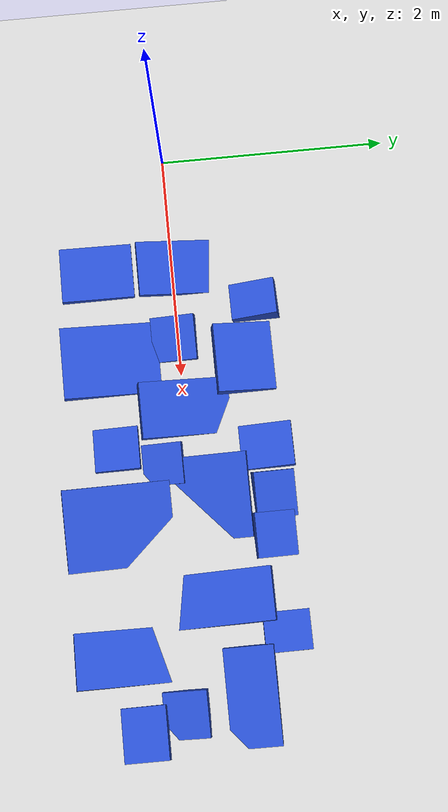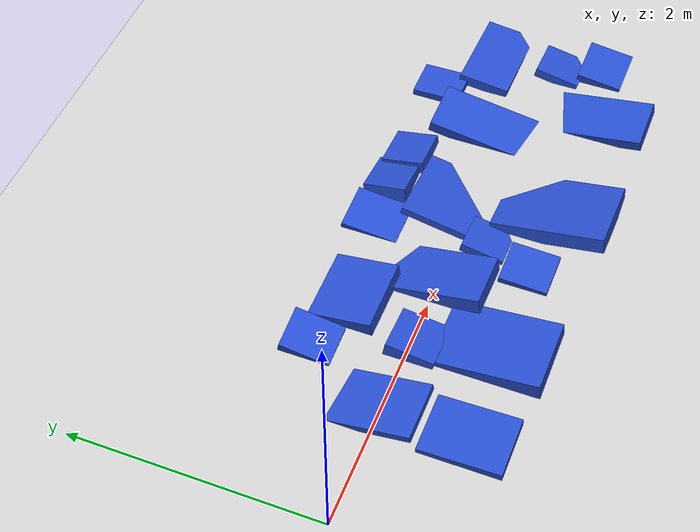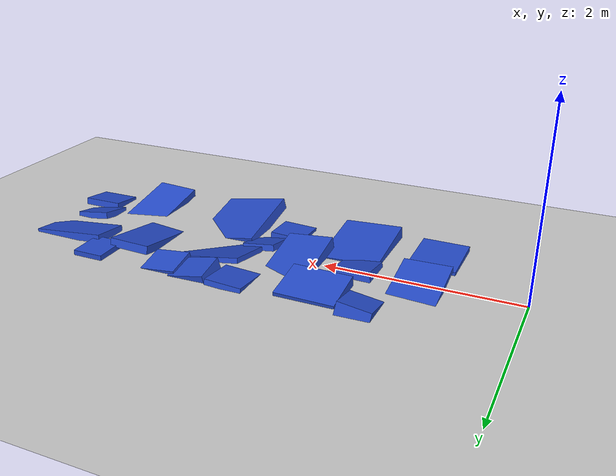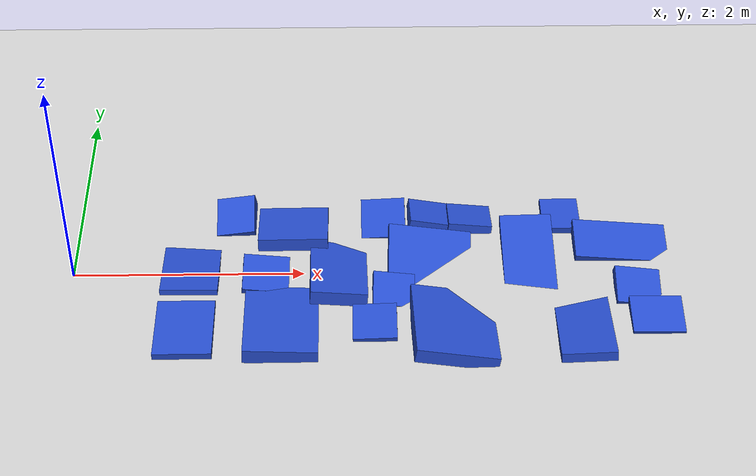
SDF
<?xml version="1.0" ?>
<sdf version="1.4">
    <world name="default">
        <physics type="ode">
            <gravity>0 0 -9.81</gravity>
            <ode>
                <solver>
                    <type>quick</type>
                    <iters>50</iters>
                    <sor>1.4</sor>
                </solver>
                <constraints>
                    <cfm>0.0</cfm>
                    <erp>0.2</erp>
                    <contact_max_correcting_vel>100.0</contact_max_correcting_vel>
                    <contact_surface_layer>0.0</contact_surface_layer>
                </constraints>
            </ode>
            <real_time_update_rate>1000</real_time_update_rate>
            <max_step_size>0.001</max_step_size>
        </physics>
        <!-- A global light source -->
        <include>
            <uri>model://sun</uri>
        </include>
        <!-- A ground plane -->
        <include>
            <uri>model://ground_plane</uri>
        </include>
        <model name="rectangle_0">
            <pose>3.957819 0.136645 0.000000 0.162477 -0.027759 0.000000</pose>
            <static>true</static>
            <link name="rectangle_0_body">
                <inertial>
                    <mass>1.0</mass>
                    <inertia>
                        <ixx>1.0</ixx>
                        <ixy>0.0</ixy>
                        <ixz>0.0</ixz>
                        <iyy>1.0</iyy>
                        <iyz>0.0</iyz>
                        <izz>1.0</izz>
                    </inertia>
                </inertial>
                <collision name="collision">
                    <geometry>
                        <box>
                            <size>0.453208 0.949988 0.091186</size>
                        </box>
                    </geometry>
                    <surface>
                        <friction>
                            <ode>
                                <mu>100</mu>
                                <mu2>100</mu2>
                            </ode>
                        </friction>
                    </surface>
                </collision>
                <visual name="visual">
                    <geometry>
                        <box>
                            <size>0.453208 0.949988 0.091186</size>
                        </box>
                    </geometry>
                    <material>
                        <script>
                            <uri>file://media/materials/scripts/gazebo.material</uri>
                            <name>Gazebo/Blue</name>
                        </script>
                    </material>
                </visual>
            </link>
        </model>
        <model name="rectangle_1">
            <pose>3.093656 0.179176 0.000000 0.168827 0.152456 0.000000</pose>
            <static>true</static>
            <link name="rectangle_1_body">
                <inertial>
                    <mass>1.0</mass>
                    <inertia>
                        <ixx>1.0</ixx>
                        <ixy>0.0</ixy>
                        <ixz>0.0</ixz>
                        <iyy>1.0</iyy>
                        <iyz>0.0</iyz>
                        <izz>1.0</izz>
                    </inertia>
                </inertial>
                <collision name="collision">
                    <geometry>
                        <box>
                            <size>0.732684 0.630580 0.055171</size>
                        </box>
                    </geometry>
                    <surface>
                        <friction>
                            <ode>
                                <mu>100</mu>
                                <mu2>100</mu2>
                            </ode>
                        </friction>
                    </surface>
                </collision>
                <visual name="visual">
                    <geometry>
                        <box>
                            <size>0.732684 0.630580 0.055171</size>
                        </box>
                    </geometry>
                    <material>
                        <script>
                            <uri>file://media/materials/scripts/gazebo.material</uri>
                            <name>Gazebo/Blue</name>
                        </script>
                    </material>
                </visual>
            </link>
        </model>
        <model name="rectangle_2">
            <pose>1.017850 0.162771 0.000000 -0.183376 0.016063 0.000000</pose>
            <static>true</static>
            <link name="rectangle_2_body">
                <inertial>
                    <mass>1.0</mass>
                    <inertia>
                        <ixx>1.0</ixx>
                        <ixy>0.0</ixy>
                        <ixz>0.0</ixz>
                        <iyy>1.0</iyy>
                        <iyz>0.0</iyz>
                        <izz>1.0</izz>
                    </inertia>
                </inertial>
                <collision name="collision">
                    <geometry>
                        <box>
                            <size>0.493209 0.946595 0.051249</size>
                        </box>
                    </geometry>
                    <surface>
                        <friction>
                            <ode>
                                <mu>100</mu>
                                <mu2>100</mu2>
                            </ode>
                        </friction>
                    </surface>
                </collision>
                <visual name="visual">
                    <geometry>
                        <box>
                            <size>0.493209 0.946595 0.051249</size>
                        </box>
                    </geometry>
                    <material>
                        <script>
                            <uri>file://media/materials/scripts/gazebo.material</uri>
                            <name>Gazebo/Blue</name>
                        </script>
                    </material>
                </visual>
            </link>
        </model>
        <model name="rectangle_3">
            <pose>4.778818 0.347739 0.000000 0.110242 0.092857 0.000000</pose>
            <static>true</static>
            <link name="rectangle_3_body">
                <inertial>
                    <mass>1.0</mass>
                    <inertia>
                        <ixx>1.0</ixx>
                        <ixy>0.0</ixy>
                        <ixz>0.0</ixz>
                        <iyy>1.0</iyy>
                        <iyz>0.0</iyz>
                        <izz>1.0</izz>
                    </inertia>
                </inertial>
                <collision name="collision">
                    <geometry>
                        <box>
                            <size>0.825089 0.425827 0.083728</size>
                        </box>
                    </geometry>
                    <surface>
                        <friction>
                            <ode>
                                <mu>100</mu>
                                <mu2>100</mu2>
                            </ode>
                        </friction>
                    </surface>
                </collision>
                <visual name="visual">
                    <geometry>
                        <box>
                            <size>0.825089 0.425827 0.083728</size>
                        </box>
                    </geometry>
                    <material>
                        <script>
                            <uri>file://media/materials/scripts/gazebo.material</uri>
                            <name>Gazebo/Blue</name>
                        </script>
                    </material>
                </visual>
            </link>
        </model>
        <model name="rectangle_4">
            <pose>1.896730 0.550920 0.000000 -0.163054 -0.011449 0.000000</pose>
            <static>true</static>
            <link name="rectangle_4_body">
                <inertial>
                    <mass>1.0</mass>
                    <inertia>
                        <ixx>1.0</ixx>
                        <ixy>0.0</ixy>
                        <ixz>0.0</ixz>
                        <iyy>1.0</iyy>
                        <iyz>0.0</iyz>
                        <izz>1.0</izz>
                    </inertia>
                </inertial>
                <collision name="collision">
                    <geometry>
                        <box>
                            <size>0.613265 0.507339 0.145061</size>
                        </box>
                    </geometry>
                    <surface>
                        <friction>
                            <ode>
                                <mu>100</mu>
                                <mu2>100</mu2>
                            </ode>
                        </friction>
                    </surface>
                </collision>
                <visual name="visual">
                    <geometry>
                        <box>
                            <size>0.613265 0.507339 0.145061</size>
                        </box>
                    </geometry>
                    <material>
                        <script>
                            <uri>file://media/materials/scripts/gazebo.material</uri>
                            <name>Gazebo/Blue</name>
                        </script>
                    </material>
                </visual>
            </link>
        </model>
        <model name="rectangle_5">
            <pose>1.813929 -0.607823 0.000000 -0.111885 0.045821 0.000000</pose>
            <static>true</static>
            <link name="rectangle_5_body">
                <inertial>
                    <mass>1.0</mass>
                    <inertia>
                        <ixx>1.0</ixx>
                        <ixy>0.0</ixy>
                        <ixz>0.0</ixz>
                        <iyy>1.0</iyy>
                        <iyz>0.0</iyz>
                        <izz>1.0</izz>
                    </inertia>
                </inertial>
                <collision name="collision">
                    <geometry>
                        <box>
                            <size>0.628971 0.846574 0.126407</size>
                        </box>
                    </geometry>
                    <surface>
                        <friction>
                            <ode>
                                <mu>100</mu>
                                <mu2>100</mu2>
                            </ode>
                        </friction>
                    </surface>
                </collision>
                <visual name="visual">
                    <geometry>
                        <box>
                            <size>0.628971 0.846574 0.126407</size>
                        </box>
                    </geometry>
                    <material>
                        <script>
                            <uri>file://media/materials/scripts/gazebo.material</uri>
                            <name>Gazebo/Blue</name>
                        </script>
                    </material>
                </visual>
            </link>
        </model>
        <model name="rectangle_6">
            <pose>3.266144 -0.647778 0.000000 -0.158566 0.171236 0.000000</pose>
            <static>true</static>
            <link name="rectangle_6_body">
                <inertial>
                    <mass>1.0</mass>
                    <inertia>
                        <ixx>1.0</ixx>
                        <ixy>0.0</ixy>
                        <ixz>0.0</ixz>
                        <iyy>1.0</iyy>
                        <iyz>0.0</iyz>
                        <izz>1.0</izz>
                    </inertia>
                </inertial>
                <collision name="collision">
                    <geometry>
                        <box>
                            <size>0.704568 0.915996 0.124389</size>
                        </box>
                    </geometry>
                    <surface>
                        <friction>
                            <ode>
                                <mu>100</mu>
                                <mu2>100</mu2>
                            </ode>
                        </friction>
                    </surface>
                </collision>
                <visual name="visual">
                    <geometry>
                        <box>
                            <size>0.704568 0.915996 0.124389</size>
                        </box>
                    </geometry>
                    <material>
                        <script>
                            <uri>file://media/materials/scripts/gazebo.material</uri>
                            <name>Gazebo/Blue</name>
                        </script>
                    </material>
                </visual>
            </link>
        </model>
        <model name="rectangle_7">
            <pose>4.367774 -0.644306 0.000000 -0.178762 -0.049758 0.000000</pose>
            <static>true</static>
            <link name="rectangle_7_body">
                <inertial>
                    <mass>1.0</mass>
                    <inertia>
                        <ixx>1.0</ixx>
                        <ixy>0.0</ixy>
                        <ixz>0.0</ixz>
                        <iyy>1.0</iyy>
                        <iyz>0.0</iyz>
                        <izz>1.0</izz>
                    </inertia>
                </inertial>
                <collision name="collision">
                    <geometry>
                        <box>
                            <size>0.463793 0.897419 0.087255</size>
                        </box>
                    </geometry>
                    <surface>
                        <friction>
                            <ode>
                                <mu>100</mu>
                                <mu2>100</mu2>
                            </ode>
                        </friction>
                    </surface>
                </collision>
                <visual name="visual">
                    <geometry>
                        <box>
                            <size>0.463793 0.897419 0.087255</size>
                        </box>
                    </geometry>
                    <material>
                        <script>
                            <uri>file://media/materials/scripts/gazebo.material</uri>
                            <name>Gazebo/Blue</name>
                        </script>
                    </material>
                </visual>
            </link>
        </model>
        <model name="rectangle_8">
            <pose>2.294374 -0.000193 0.000000 -0.182519 0.086404 0.000000</pose>
            <static>true</static>
            <link name="rectangle_8_body">
                <inertial>
                    <mass>1.0</mass>
                    <inertia>
                        <ixx>1.0</ixx>
                        <ixy>0.0</ixy>
                        <ixz>0.0</ixz>
                        <iyy>1.0</iyy>
                        <iyz>0.0</iyz>
                        <izz>1.0</izz>
                    </inertia>
                </inertial>
                <collision name="collision">
                    <geometry>
                        <box>
                            <size>0.490415 0.780663 0.124919</size>
                        </box>
                    </geometry>
                    <surface>
                        <friction>
                            <ode>
                                <mu>100</mu>
                                <mu2>100</mu2>
                            </ode>
                        </friction>
                    </surface>
                </collision>
                <visual name="visual">
                    <geometry>
                        <box>
                            <size>0.490415 0.780663 0.124919</size>
                        </box>
                    </geometry>
                    <material>
                        <script>
                            <uri>file://media/materials/scripts/gazebo.material</uri>
                            <name>Gazebo/Blue</name>
                        </script>
                    </material>
                </visual>
            </link>
        </model>
        <model name="rectangle_9">
            <pose>2.605132 -0.612097 0.000000 0.046243 -0.038123 0.000000</pose>
            <static>true</static>
            <link name="rectangle_9_body">
                <inertial>
                    <mass>1.0</mass>
                    <inertia>
                        <ixx>1.0</ixx>
                        <ixy>0.0</ixy>
                        <ixz>0.0</ixz>
                        <iyy>1.0</iyy>
                        <iyz>0.0</iyz>
                        <izz>1.0</izz>
                    </inertia>
                </inertial>
                <collision name="collision">
                    <geometry>
                        <box>
                            <size>0.373481 0.388719 0.085042</size>
                        </box>
                    </geometry>
                    <surface>
                        <friction>
                            <ode>
                                <mu>100</mu>
                                <mu2>100</mu2>
                            </ode>
                        </friction>
                    </surface>
                </collision>
                <visual name="visual">
                    <geometry>
                        <box>
                            <size>0.373481 0.388719 0.085042</size>
                        </box>
                    </geometry>
                    <material>
                        <script>
                            <uri>file://media/materials/scripts/gazebo.material</uri>
                            <name>Gazebo/Blue</name>
                        </script>
                    </material>
                </visual>
            </link>
        </model>
        <model name="rectangle_10">
            <pose>1.002786 -0.668448 0.000000 -0.035278 -0.005282 0.000000</pose>
            <static>true</static>
            <link name="rectangle_10_body">
                <inertial>
                    <mass>1.0</mass>
                    <inertia>
                        <ixx>1.0</ixx>
                        <ixy>0.0</ixy>
                        <ixz>0.0</ixz>
                        <iyy>1.0</iyy>
                        <iyz>0.0</iyz>
                        <izz>1.0</izz>
                    </inertia>
                </inertial>
                <collision name="collision">
                    <geometry>
                        <box>
                            <size>0.492754 0.636921 0.088283</size>
                        </box>
                    </geometry>
                    <surface>
                        <friction>
                            <ode>
                                <mu>100</mu>
                                <mu2>100</mu2>
                            </ode>
                        </friction>
                    </surface>
                </collision>
                <visual name="visual">
                    <geometry>
                        <box>
                            <size>0.492754 0.636921 0.088283</size>
                        </box>
                    </geometry>
                    <material>
                        <script>
                            <uri>file://media/materials/scripts/gazebo.material</uri>
                            <name>Gazebo/Blue</name>
                        </script>
                    </material>
                </visual>
            </link>
        </model>
        <model name="rectangle_11">
            <pose>2.694997 0.676221 0.000000 0.103912 -0.055280 0.000000</pose>
            <static>true</static>
            <link name="rectangle_11_body">
                <inertial>
                    <mass>1.0</mass>
                    <inertia>
                        <ixx>1.0</ixx>
                        <ixy>0.0</ixy>
                        <ixz>0.0</ixz>
                        <iyy>1.0</iyy>
                        <iyz>0.0</iyz>
                        <izz>1.0</izz>
                    </inertia>
                </inertial>
                <collision name="collision">
                    <geometry>
                        <box>
                            <size>0.391116 0.457799 0.060465</size>
                        </box>
                    </geometry>
                    <surface>
                        <friction>
                            <ode>
                                <mu>100</mu>
                                <mu2>100</mu2>
                            </ode>
                        </friction>
                    </surface>
                </collision>
                <visual name="visual">
                    <geometry>
                        <box>
                            <size>0.391116 0.457799 0.060465</size>
                        </box>
                    </geometry>
                    <material>
                        <script>
                            <uri>file://media/materials/scripts/gazebo.material</uri>
                            <name>Gazebo/Blue</name>
                        </script>
                    </material>
                </visual>
            </link>
        </model>
        <model name="rectangle_12">
            <pose>3.458847 0.670051 0.000000 -0.194641 0.104219 0.000000</pose>
            <static>true</static>
            <link name="rectangle_12_body">
                <inertial>
                    <mass>1.0</mass>
                    <inertia>
                        <ixx>1.0</ixx>
                        <ixy>0.0</ixy>
                        <ixz>0.0</ixz>
                        <iyy>1.0</iyy>
                        <iyz>0.0</iyz>
                        <izz>1.0</izz>
                    </inertia>
                </inertial>
                <collision name="collision">
                    <geometry>
                        <box>
                            <size>0.385851 0.349472 0.101981</size>
                        </box>
                    </geometry>
                    <surface>
                        <friction>
                            <ode>
                                <mu>100</mu>
                                <mu2>100</mu2>
                            </ode>
                        </friction>
                    </surface>
                </collision>
                <visual name="visual">
                    <geometry>
                        <box>
                            <size>0.385851 0.349472 0.101981</size>
                        </box>
                    </geometry>
                    <material>
                        <script>
                            <uri>file://media/materials/scripts/gazebo.material</uri>
                            <name>Gazebo/Blue</name>
                        </script>
                    </material>
                </visual>
            </link>
        </model>
        <model name="rectangle_13">
            <pose>1.665399 -0.034797 0.000000 0.133813 0.112243 0.000000</pose>
            <static>true</static>
            <link name="rectangle_13_body">
                <inertial>
                    <mass>1.0</mass>
                    <inertia>
                        <ixx>1.0</ixx>
                        <ixy>0.0</ixy>
                        <ixz>0.0</ixz>
                        <iyy>1.0</iyy>
                        <iyz>0.0</iyz>
                        <izz>1.0</izz>
                    </inertia>
                </inertial>
                <collision name="collision">
                    <geometry>
                        <box>
                            <size>0.400234 0.386290 0.110480</size>
                        </box>
                    </geometry>
                    <surface>
                        <friction>
                            <ode>
                                <mu>100</mu>
                                <mu2>100</mu2>
                            </ode>
                        </friction>
                    </surface>
                </collision>
                <visual name="visual">
                    <geometry>
                        <box>
                            <size>0.400234 0.386290 0.110480</size>
                        </box>
                    </geometry>
                    <material>
                        <script>
                            <uri>file://media/materials/scripts/gazebo.material</uri>
                            <name>Gazebo/Blue</name>
                        </script>
                    </material>
                </visual>
            </link>
        </model>
        <model name="rectangle_14">
            <pose>4.992021 -0.555580 0.000000 0.127103 0.005661 0.000000</pose>
            <static>true</static>
            <link name="rectangle_14_body">
                <inertial>
                    <mass>1.0</mass>
                    <inertia>
                        <ixx>1.0</ixx>
                        <ixy>0.0</ixy>
                        <ixz>0.0</ixz>
                        <iyy>1.0</iyy>
                        <iyz>0.0</iyz>
                        <izz>1.0</izz>
                    </inertia>
                </inertial>
                <collision name="collision">
                    <geometry>
                        <box>
                            <size>0.443177 0.377043 0.093020</size>
                        </box>
                    </geometry>
                    <surface>
                        <friction>
                            <ode>
                                <mu>100</mu>
                                <mu2>100</mu2>
                            </ode>
                        </friction>
                    </surface>
                </collision>
                <visual name="visual">
                    <geometry>
                        <box>
                            <size>0.443177 0.377043 0.093020</size>
                        </box>
                    </geometry>
                    <material>
                        <script>
                            <uri>file://media/materials/scripts/gazebo.material</uri>
                            <name>Gazebo/Blue</name>
                        </script>
                    </material>
                </visual>
            </link>
        </model>
        <model name="rectangle_15">
            <pose>3.116861 0.698378 0.000000 -0.163106 0.184894 0.000000</pose>
            <static>true</static>
            <link name="rectangle_15_body">
                <inertial>
                    <mass>1.0</mass>
                    <inertia>
                        <ixx>1.0</ixx>
                        <ixy>0.0</ixy>
                        <ixz>0.0</ixz>
                        <iyy>1.0</iyy>
                        <iyz>0.0</iyz>
                        <izz>1.0</izz>
                    </inertia>
                </inertial>
                <collision name="collision">
                    <geometry>
                        <box>
                            <size>0.399201 0.352779 0.125928</size>
                        </box>
                    </geometry>
                    <surface>
                        <friction>
                            <ode>
                                <mu>100</mu>
                                <mu2>100</mu2>
                            </ode>
                        </friction>
                    </surface>
                </collision>
                <visual name="visual">
                    <geometry>
                        <box>
                            <size>0.399201 0.352779 0.125928</size>
                        </box>
                    </geometry>
                    <material>
                        <script>
                            <uri>file://media/materials/scripts/gazebo.material</uri>
                            <name>Gazebo/Blue</name>
                        </script>
                    </material>
                </visual>
            </link>
        </model>
        <model name="rectangle_16">
            <pose>4.278659 0.687008 0.000000 -0.018084 -0.001094 0.000000</pose>
            <static>true</static>
            <link name="rectangle_16_body">
                <inertial>
                    <mass>1.0</mass>
                    <inertia>
                        <ixx>1.0</ixx>
                        <ixy>0.0</ixy>
                        <ixz>0.0</ixz>
                        <iyy>1.0</iyy>
                        <iyz>0.0</iyz>
                        <izz>1.0</izz>
                    </inertia>
                </inertial>
                <collision name="collision">
                    <geometry>
                        <box>
                            <size>0.336311 0.393526 0.106805</size>
                        </box>
                    </geometry>
                    <surface>
                        <friction>
                            <ode>
                                <mu>100</mu>
                                <mu2>100</mu2>
                            </ode>
                        </friction>
                    </surface>
                </collision>
                <visual name="visual">
                    <geometry>
                        <box>
                            <size>0.336311 0.393526 0.106805</size>
                        </box>
                    </geometry>
                    <material>
                        <script>
                            <uri>file://media/materials/scripts/gazebo.material</uri>
                            <name>Gazebo/Blue</name>
                        </script>
                    </material>
                </visual>
            </link>
        </model>
        <model name="rectangle_17">
            <pose>2.769020 -0.224809 0.000000 0.173680 0.129302 0.000000</pose>
            <static>true</static>
            <link name="rectangle_17_body">
                <inertial>
                    <mass>1.0</mass>
                    <inertia>
                        <ixx>1.0</ixx>
                        <ixy>0.0</ixy>
                        <ixz>0.0</ixz>
                        <iyy>1.0</iyy>
                        <iyz>0.0</iyz>
                        <izz>1.0</izz>
                    </inertia>
                </inertial>
                <collision name="collision">
                    <geometry>
                        <box>
                            <size>0.358800 0.349576 0.069063</size>
                        </box>
                    </geometry>
                    <surface>
                        <friction>
                            <ode>
                                <mu>100</mu>
                                <mu2>100</mu2>
                            </ode>
                        </friction>
                    </surface>
                </collision>
                <visual name="visual">
                    <geometry>
                        <box>
                            <size>0.358800 0.349576 0.069063</size>
                        </box>
                    </geometry>
                    <material>
                        <script>
                            <uri>file://media/materials/scripts/gazebo.material</uri>
                            <name>Gazebo/Blue</name>
                        </script>
                    </material>
                </visual>
            </link>
        </model>
        <model name="rectangle_18">
            <pose>1.388187 0.697171 0.000000 0.194407 -0.141119 0.000000</pose>
            <static>true</static>
            <link name="rectangle_18_body">
                <inertial>
                    <mass>1.0</mass>
                    <inertia>
                        <ixx>1.0</ixx>
                        <ixy>0.0</ixy>
                        <ixz>0.0</ixz>
                        <iyy>1.0</iyy>
                        <iyz>0.0</iyz>
                        <izz>1.0</izz>
                    </inertia>
                </inertial>
                <collision name="collision">
                    <geometry>
                        <box>
                            <size>0.340170 0.403731 0.135693</size>
                        </box>
                    </geometry>
                    <surface>
                        <friction>
                            <ode>
                                <mu>100</mu>
                                <mu2>100</mu2>
                            </ode>
                        </friction>
                    </surface>
                </collision>
                <visual name="visual">
                    <geometry>
                        <box>
                            <size>0.340170 0.403731 0.135693</size>
                        </box>
                    </geometry>
                    <material>
                        <script>
                            <uri>file://media/materials/scripts/gazebo.material</uri>
                            <name>Gazebo/Blue</name>
                        </script>
                    </material>
                </visual>
            </link>
        </model>
        <model name="rectangle_19">
            <pose>4.870550 -0.207235 0.000000 0.174975 0.138772 0.000000</pose>
            <static>true</static>
            <link name="rectangle_19_body">
                <inertial>
                    <mass>1.0</mass>
                    <inertia>
                        <ixx>1.0</ixx>
                        <ixy>0.0</ixy>
                        <ixz>0.0</ixz>
                        <iyy>1.0</iyy>
                        <iyz>0.0</iyz>
                        <izz>1.0</izz>
                    </inertia>
                </inertial>
                <collision name="collision">
                    <geometry>
                        <box>
                            <size>0.391843 0.375464 0.072624</size>
                        </box>
                    </geometry>
                    <surface>
                        <friction>
                            <ode>
                                <mu>100</mu>
                                <mu2>100</mu2>
                            </ode>
                        </friction>
                    </surface>
                </collision>
                <visual name="visual">
                    <geometry>
                        <box>
                            <size>0.391843 0.375464 0.072624</size>
                        </box>
                    </geometry>
                    <material>
                        <script>
                            <uri>file://media/materials/scripts/gazebo.material</uri>
                            <name>Gazebo/Blue</name>
                        </script>
                    </material>
                </visual>
            </link>
        </model>
    </world>
</sdf>
